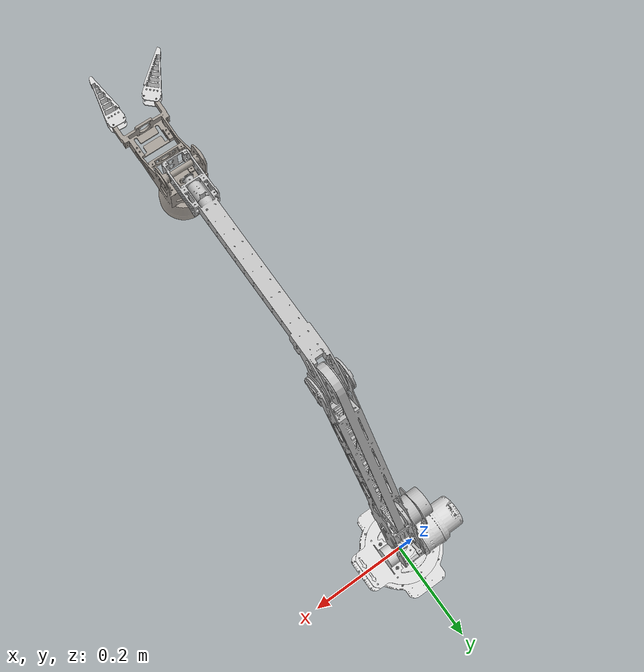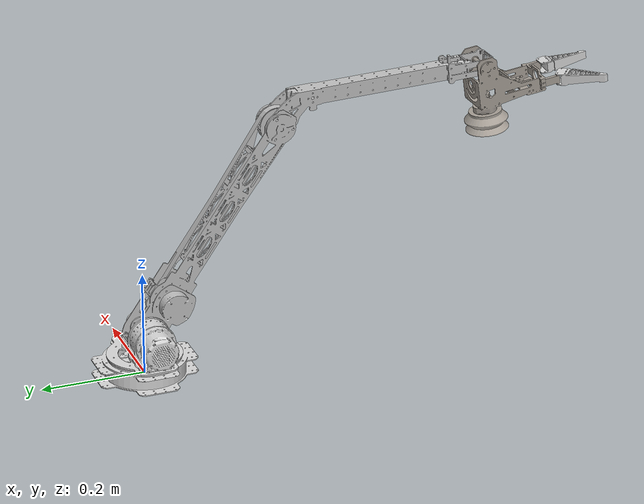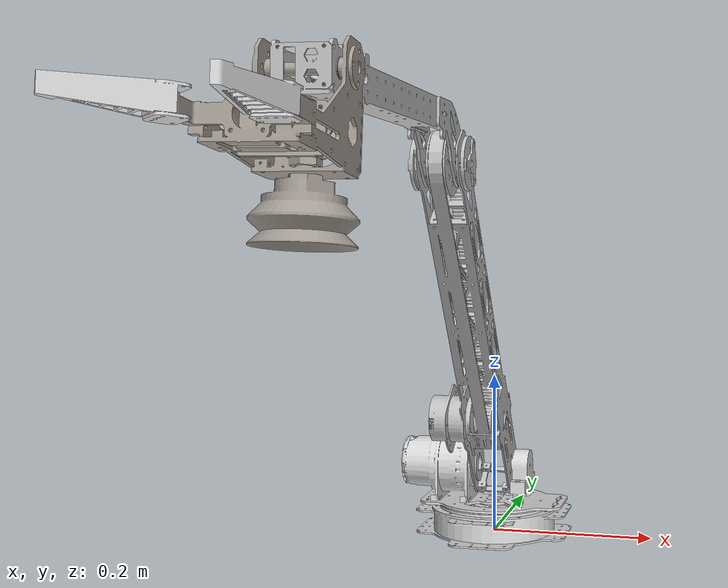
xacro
<?xml version="1.0"?>
<robot name="arm_robot" xmlns:xacro="http://www.ros.org/wiki/xacro">

  <xacro:include filename="$(find arm_all)/urdf/arm_transmissions.xacro" />
  <xacro:include filename="$(find arm_all)/urdf/arm_all.urdf" />

  <!-- 关节1: 力矩控制 + 位置控制 -->
  <xacro:arm_position_transmission name="joint1" lower="-3.14" upper="3.14" velocity_limit="1.0" effort_limit="10"/>

  <!-- 关节2: 力矩控制 + 位置控制 -->
  <xacro:arm_position_transmission name="joint2" lower="-3.14" upper="3.14" velocity_limit="1.0" effort_limit="10"/>

  <!-- 关节3: 力矩控制 + 位置控制 -->
  <xacro:arm_position_transmission name="joint3" lower="-3.14" upper="3.14" velocity_limit="1.0" effort_limit="10"/>

  <!-- 关节4: 力矩控制 + 位置控制 -->
  <xacro:arm_position_transmission name="joint4" lower="-3.14" upper="3.14" velocity_limit="1.0" effort_limit="10"/>

  <!-- 关节5: 力矩控制 + 位置控制 -->
  <xacro:arm_position_transmission name="joint5" lower="-3.14" upper="3.14" velocity_limit="1.0" effort_limit="10"/>

  <!-- 关节6: 力矩控制 + 位置控制 -->
  <xacro:arm_position_transmission name="joint6" lower="-3.14" upper="3.14" velocity_limit="1.0" effort_limit="10"/>

  <!-- Gazebo ROS Control 插件 -->
  <gazebo>
    <plugin name="gazebo_ros_control" filename="libgazebo_ros_control.so">
      <robotNamespace>/</robotNamespace>
      <controlPeriod>0.001</controlPeriod>
      <robotParam>robot_description</robotParam>
    </plugin>
  </gazebo>

</robot>

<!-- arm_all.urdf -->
<robot name="arm_all">

<link name="world"/>

<joint name="fixed_base_joint" type="fixed">
    <parent link="world"/>
    <child link="base_link"/>
    <origin xyz="0 0 0" rpy="0 0 0"/>
</joint>

    <link name="base_link">
    <inertial>
      <origin
        xyz="-1.88965214434326E-05 0.0211283085658793 2.88501980018766E-05"
        rpy="0 0 0" />
      <mass
        value="0.65713178608687" />
      <inertia
        ixx="0.00126176729018005"
        ixy="2.52839018847434E-08"
        ixz="-3.62884926508966E-07"
        iyy="0.00249239605965953"
        iyz="-3.06356495865232E-08"
        izz="0.00125428302491633" />
    </inertial>
        <visual>
            <origin xyz="0 0 0" rpy="0 0 0" />
            <geometry>
                <mesh filename="package://arm_all/meshes/base_link.STL" />
            </geometry>
            <material name="">
                <color rgba="0.847058823529412 0.847058823529412 0.847058823529412 1" />
            </material>
        </visual>
        <collision>
            <origin xyz="0 0 0" rpy="0 0 0" />
            <geometry>
                <mesh filename="package://arm_all/meshes/base_link.STL" />
            </geometry>
        </collision>
    </link>
    <link name="link1">
    <inertial>
      <origin
        xyz="-6.50420272596414E-06 -0.0220639376985768 -0.00046997962461109"
        rpy="0 0 0" />
      <mass
        value="0.333784886280084" />
      <inertia
        ixx="0.000351722248401474"
        ixy="1.36600184498728E-12"
        ixz="-1.33484971668896E-10"
        iyy="0.000499503930329465"
        iyz="-1.63022774448878E-08"
        izz="0.000289258919735572" />
    </inertial>
        <visual>
            <origin xyz="0 0 0" rpy="0 0 0" />
            <geometry>
                <mesh filename="package://arm_all/meshes/link1.STL" />
            </geometry>
            <material name="">
                <color rgba="0.847058823529412 0.847058823529412 0.847058823529412 1" />
            </material>
        </visual>
        <collision>
            <origin xyz="0 0 0" rpy="0 0 0" />
            <geometry>
                <mesh filename="package://arm_all/meshes/link1.STL" />
            </geometry>
        </collision>
    </link>
    <joint name="joint1" type="continuous">
        <origin rpy="-1.5708 0 -1.5708" xyz="0 0 0.0413" />
        <parent link="base_link" />
        <child link="link1" />
        <axis xyz="0 1 0" />
    </joint>
    <link name="link2">
    <inertial>
      <origin
        xyz="0.134772098555545 0.226393581441748 0.00612814215173783"
        rpy="0 0 0" />
      <mass
        value="0.827122048748664" />
      <inertia
        ixx="0.00408491785355023"
        ixy="-0.00229408604342064"
        ixz="-1.21881927334501E-10"
        iyy="0.00160055805144718"
        iyz="-1.67553014233216E-08"
        izz="0.00555583774732216" />
    </inertial>
        <visual>
            <origin xyz="0 0 0" rpy="0 0 0" />
            <geometry>
                <mesh filename="package://arm_all/meshes/link2.STL" />
            </geometry>
            <material name="">
                <color rgba="0.752941176470588 0.752941176470588 0.752941176470588 1" />
            </material>
        </visual>
        <collision>
            <origin xyz="0 0 0" rpy="0 0 0" />
            <geometry>
                <mesh filename="package://arm_all/meshes/link2.STL" />
            </geometry>
        </collision>
    </link>
    <joint name="joint2" type="continuous">
        <origin xyz="0 -0.0449999999999999 0" rpy="3.14159265358979 0 0.0776243284743282" />
        <parent link="link1" />
        <child link="link2" />
        <axis xyz="0 0 1" />
    </joint>
    <link name="link3">
    <inertial>
      <origin
        xyz="0.14609262858064 0.0573447220053238 -1.32103128163748E-05"
        rpy="0 0 0" />
      <mass
        value="0.322775937743134" />
      <inertia
        ixx="0.000125581010505456"
        ixy="-0.000175503683436308"
        ixz="-1.0080412736428E-11"
        iyy="0.00102950672738152"
        iyz="6.86215120964268E-11"
        izz="0.00111046718193839" />
    </inertial>
        <visual>
            <origin xyz="0 0 0" rpy="0 0 0" />
            <geometry>
                <mesh filename="package://arm_all/meshes/link3.STL" />
            </geometry>
            <material name="">
                <color rgba="0.752941176470588 0.752941176470588 0.752941176470588 1" />
            </material>
        </visual>
        <collision>
            <origin xyz="0 0 0" rpy="0 0 0" />
            <geometry>
                <mesh filename="package://arm_all/meshes/link3.STL" />
            </geometry>
        </collision>
    </link>
    <joint name="joint3" type="continuous">
        <origin xyz="0.234710656582035 0.393966153099294 0" rpy="0 0 -0.0458697032339479" />
        <parent link="link2" />
        <child link="link3" />
        <axis xyz="0 0 1" />
    </joint>
    <link name="link4">
    <inertial>
      <origin
        xyz="-0.0483821633151282 -0.0245616027376705 1.07514025356192E-05"
        rpy="0 0 0" />
      <mass
        value="0.377132174594097" />
      <inertia
        ixx="0.000259104564788337"
        ixy="-3.47286921823512E-05"
        ixz="-6.33132149766361E-09"
        iyy="0.000192115538025694"
        iyz="2.31982726278168E-07"
        izz="0.000221724975669375" />
    </inertial>
        <visual>
            <origin xyz="0 0 0" rpy="0 0 0" />
            <geometry>
                <mesh filename="package://arm_all/meshes/link4.STL" />
            </geometry>
            <material name="">
                <color rgba="0.647058823529412 0.619607843137255 0.588235294117647 1" />
            </material>
        </visual>
        <collision>
            <origin xyz="0 0 0" rpy="0 0 0" />
            <geometry>
                <mesh filename="package://arm_all/meshes/link4.STL" />
            </geometry>
        </collision>
    </link>
    <joint name="joint4" type="continuous">
        <origin xyz="0.399188356386981 0.112595227473441 0" rpy="0 0 1.80974775191367" />
        <parent link="link3" />
        <child link="link4" />
        <axis xyz="0 0 1" />
    </joint>
    <link name="left_end">
    <inertial>
      <origin
        xyz="0.165934470985643 0.0326110187543487 -0.0559999994890883"
        rpy="0 0 0" />
      <mass
        value="0.0230133687347436" />
      <inertia
        ixx="1.91581568607213E-06"
        ixy="1.58592840958828E-07"
        ixz="-4.59298269044332E-13"
        iyy="1.08150257266556E-05"
        iyz="-6.52852556405479E-14"
        izz="1.18994762991137E-05" />
    </inertial>
        <visual>
            <origin xyz="0 0 0" rpy="0 0 0" />
            <geometry>
                <mesh filename="package://arm_all/meshes/left_end.STL" />
            </geometry>
            <material name="">
                <color rgba="0.847058823529412 0.847058823529412 0.847058823529412 1" />
            </material>
        </visual>
        <collision>
            <origin xyz="0 0 0" rpy="0 0 0" />
            <geometry>
                <mesh filename="package://arm_all/meshes/left_end.STL" />
            </geometry>
        </collision>
    </link>
    <joint name="joint5" type="continuous">
        <origin xyz="0 0 -0.0066881981068947" rpy="-1.5707963267949 -0.0524449607991221 -1.54351099917729" />
        <parent link="link4" />
        <child link="left_end" />
        <axis xyz="0 0 1" />
    </joint>
    <link name="right_end">
    <inertial>
      <origin
        xyz="0.149189877500569 -0.0829023910248987 0.0559999993539835"
        rpy="0 0 0" />
      <mass
        value="0.0230133523586075" />
      <inertia
        ixx="1.91581658865105E-06"
        ixy="1.58594185971336E-07"
        ixz="4.13809191819123E-13"
        iyy="1.08149990275717E-05"
        iyz="1.72820988049209E-13"
        izz="1.18994508373215E-05" />
    </inertial>
        <visual>
            <origin xyz="0 0 0" rpy="0 0 0" />
            <geometry>
                <mesh filename="package://arm_all/meshes/right_end.STL" />
            </geometry>
            <material name="">
                <color rgba="0.847058823529412 0.847058823529412 0.847058823529412 1" />
            </material>
        </visual>
        <collision>
            <origin xyz="0 0 0" rpy="0 0 0" />
            <geometry>
                <mesh filename="package://arm_all/meshes/right_end.STL" />
            </geometry>
        </collision>
    </link>
    <joint name="joint6" type="continuous">
        <origin xyz="0 0 0.01744" rpy="1.5708 -0.7251 -1.5435" />
        <parent link="link4" />
        <child link="right_end" />
        <axis xyz="0 0 -1" />
    </joint>

</robot>
